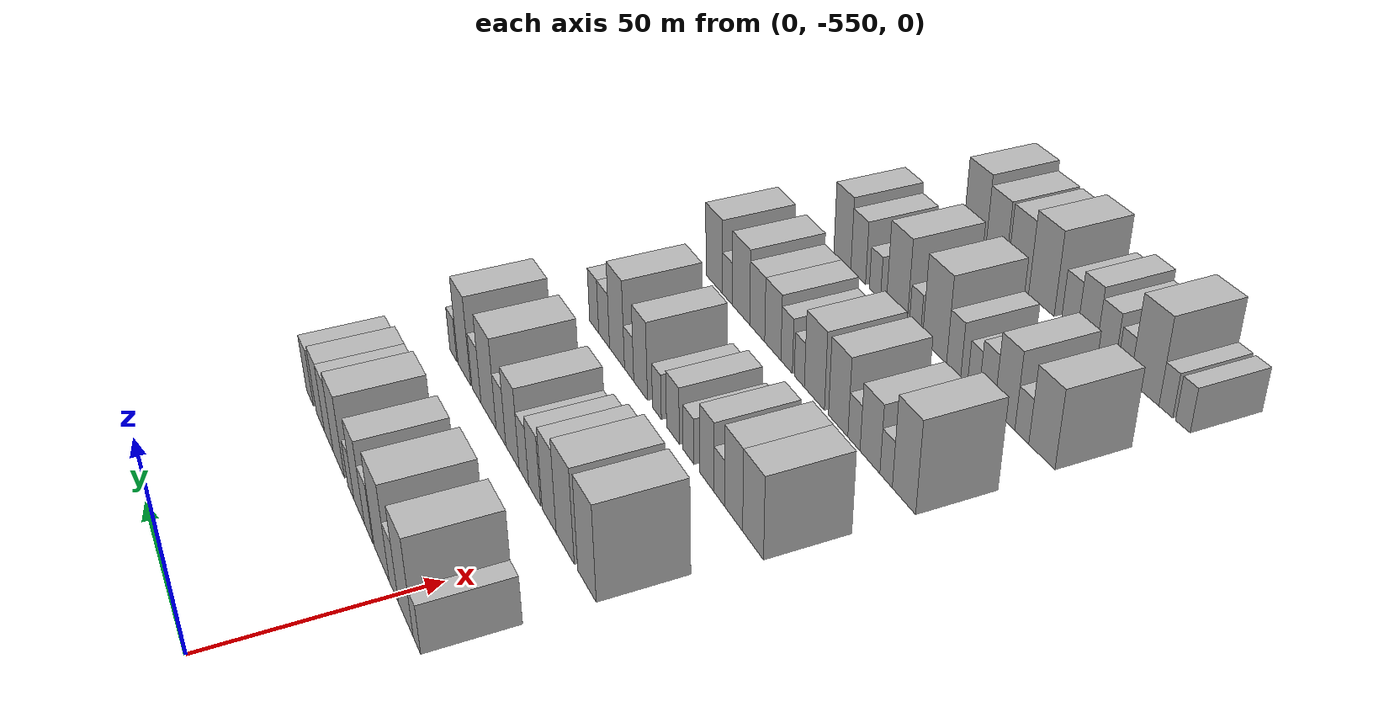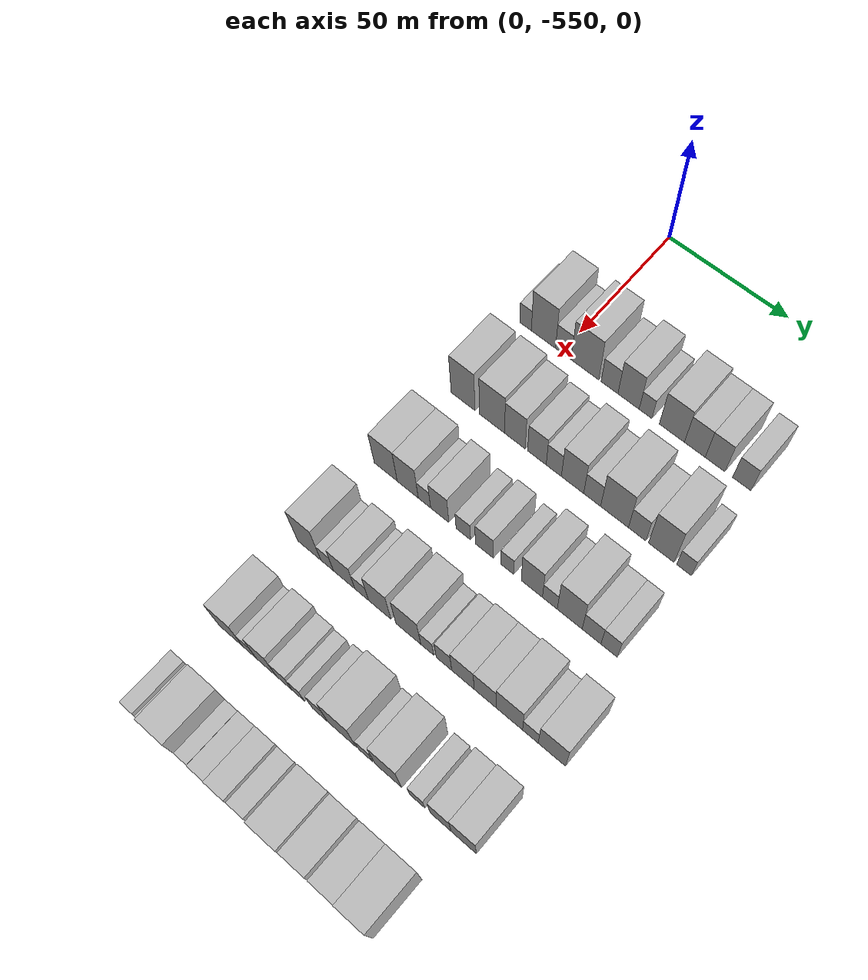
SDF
<sdf version="1.6">
 <world name="default">
  <model name="building_1">
   <static>1</static>
   <pose>50.0000 -565.4581 0 0.000000 0.000000 0.000000</pose>
   <link name="link">
    <pose>0 0 6.00 0 0 0</pose>
    <collision name="collision"><geometry><box><size>20.0000 5.0838 12.0000</size></box></geometry></collision>
    <visual name="visual">
     <cast_shadows>0</cast_shadows>
     <geometry><box><size>20.0000 5.0838 12.0000</size></box></geometry>
     <material>
      <script>
       <uri>model://HANNAS_wall/materials/scripts</uri>
       <uri>model://HANNAS_wall/materials/textures</uri>
       <name>vrc/HANNAS_wall</name>
      </script>
     </material>
    </visual>
   </link>
  </model>
  <model name="building_2">
   <static>1</static>
   <pose>50.0000 -557.6715 0 0.000000 0.000000 0.000000</pose>
   <link name="link">
    <pose>0 0 12.00 0 0 0</pose>
    <collision name="collision"><geometry><box><size>20.0000 10.4893 24.0000</size></box></geometry></collision>
    <visual name="visual">
     <cast_shadows>0</cast_shadows>
     <geometry><box><size>20.0000 10.4893 24.0000</size></box></geometry>
     <material>
      <script>
       <uri>model://HANNAS_wall/materials/scripts</uri>
       <uri>model://HANNAS_wall/materials/textures</uri>
       <name>vrc/HANNAS_wall</name>
      </script>
     </material>
    </visual>
   </link>
  </model>
  <model name="building_3">
   <static>1</static>
   <pose>50.0000 -549.0531 0 0.000000 0.000000 0.000000</pose>
   <link name="link">
    <pose>0 0 7.50 0 0 0</pose>
    <collision name="collision"><geometry><box><size>20.0000 6.7475 15.0000</size></box></geometry></collision>
    <visual name="visual">
     <cast_shadows>0</cast_shadows>
     <geometry><box><size>20.0000 6.7475 15.0000</size></box></geometry>
     <material>
      <script>
       <uri>model://HANNAS_wall/materials/scripts</uri>
       <uri>model://HANNAS_wall/materials/textures</uri>
       <name>vrc/HANNAS_wall</name>
      </script>
     </material>
    </visual>
   </link>
  </model>
  <model name="building_4">
   <static>1</static>
   <pose>50.0000 -539.8728 0 0.000000 0.000000 0.000000</pose>
   <link name="link">
    <pose>0 0 12.00 0 0 0</pose>
    <collision name="collision"><geometry><box><size>20.0000 11.6132 24.0000</size></box></geometry></collision>
    <visual name="visual">
     <cast_shadows>0</cast_shadows>
     <geometry><box><size>20.0000 11.6132 24.0000</size></box></geometry>
     <material>
      <script>
       <uri>model://HANNAS_wall/materials/scripts</uri>
       <uri>model://HANNAS_wall/materials/textures</uri>
       <name>vrc/HANNAS_wall</name>
      </script>
     </material>
    </visual>
   </link>
  </model>
  <model name="building_5">
   <static>1</static>
   <pose>50.0000 -529.5583 0 0.000000 0.000000 0.000000</pose>
   <link name="link">
    <pose>0 0 7.50 0 0 0</pose>
    <collision name="collision"><geometry><box><size>20.0000 7.0158 15.0000</size></box></geometry></collision>
    <visual name="visual">
     <cast_shadows>0</cast_shadows>
     <geometry><box><size>20.0000 7.0158 15.0000</size></box></geometry>
     <material>
      <script>
       <uri>model://HANNAS_wall/materials/scripts</uri>
       <uri>model://HANNAS_wall/materials/textures</uri>
       <name>vrc/HANNAS_wall</name>
      </script>
     </material>
    </visual>
   </link>
  </model>
  <model name="building_6">
   <static>1</static>
   <pose>50.0000 -521.6646 0 0.000000 0.000000 0.000000</pose>
   <link name="link">
    <pose>0 0 10.50 0 0 0</pose>
    <collision name="collision"><geometry><box><size>20.0000 8.7716 21.0000</size></box></geometry></collision>
    <visual name="visual">
     <cast_shadows>0</cast_shadows>
     <geometry><box><size>20.0000 8.7716 21.0000</size></box></geometry>
     <material>
      <script>
       <uri>model://HANNAS_wall/materials/scripts</uri>
       <uri>model://HANNAS_wall/materials/textures</uri>
       <name>vrc/HANNAS_wall</name>
      </script>
     </material>
    </visual>
   </link>
  </model>
  <model name="building_7">
   <static>1</static>
   <pose>50.0000 -514.6572 0 0.000000 0.000000 0.000000</pose>
   <link name="link">
    <pose>0 0 6.00 0 0 0</pose>
    <collision name="collision"><geometry><box><size>20.0000 5.2432 12.0000</size></box></geometry></collision>
    <visual name="visual">
     <cast_shadows>0</cast_shadows>
     <geometry><box><size>20.0000 5.2432 12.0000</size></box></geometry>
     <material>
      <script>
       <uri>model://HANNAS_wall/materials/scripts</uri>
       <uri>model://HANNAS_wall/materials/textures</uri>
       <name>vrc/HANNAS_wall</name>
      </script>
     </material>
    </visual>
   </link>
  </model>
  <model name="building_8">
   <static>1</static>
   <pose>50.0000 -503.9667 0 0.000000 0.000000 0.000000</pose>
   <link name="link">
    <pose>0 0 10.50 0 0 0</pose>
    <collision name="collision"><geometry><box><size>20.0000 10.1376 21.0000</size></box></geometry></collision>
    <visual name="visual">
     <cast_shadows>0</cast_shadows>
     <geometry><box><size>20.0000 10.1376 21.0000</size></box></geometry>
     <material>
      <script>
       <uri>model://HANNAS_wall/materials/scripts</uri>
       <uri>model://HANNAS_wall/materials/textures</uri>
       <name>vrc/HANNAS_wall</name>
      </script>
     </material>
    </visual>
   </link>
  </model>
  <model name="building_9">
   <static>1</static>
   <pose>50.0000 -494.7664 0 0.000000 0.000000 0.000000</pose>
   <link name="link">
    <pose>0 0 9.00 0 0 0</pose>
    <collision name="collision"><geometry><box><size>20.0000 8.2630 18.0000</size></box></geometry></collision>
    <visual name="visual">
     <cast_shadows>0</cast_shadows>
     <geometry><box><size>20.0000 8.2630 18.0000</size></box></geometry>
     <material>
      <script>
       <uri>model://HANNAS_wall/materials/scripts</uri>
       <uri>model://HANNAS_wall/materials/textures</uri>
       <name>vrc/HANNAS_wall</name>
      </script>
     </material>
    </visual>
   </link>
  </model>
  <model name="building_10">
   <static>1</static>
   <pose>50.0000 -486.7391 0 0.000000 0.000000 0.000000</pose>
   <link name="link">
    <pose>0 0 9.00 0 0 0</pose>
    <collision name="collision"><geometry><box><size>20.0000 7.7915 18.0000</size></box></geometry></collision>
    <visual name="visual">
     <cast_shadows>0</cast_shadows>
     <geometry><box><size>20.0000 7.7915 18.0000</size></box></geometry>
     <material>
      <script>
       <uri>model://HANNAS_wall/materials/scripts</uri>
       <uri>model://HANNAS_wall/materials/textures</uri>
       <name>vrc/HANNAS_wall</name>
      </script>
     </material>
    </visual>
   </link>
  </model>
  <model name="building_11">
   <static>1</static>
   <pose>50.0000 -476.2777 0 0.000000 0.000000 0.000000</pose>
   <link name="link">
    <pose>0 0 7.50 0 0 0</pose>
    <collision name="collision"><geometry><box><size>20.0000 7.1315 15.0000</size></box></geometry></collision>
    <visual name="visual">
     <cast_shadows>0</cast_shadows>
     <geometry><box><size>20.0000 7.1315 15.0000</size></box></geometry>
     <material>
      <script>
       <uri>model://HANNAS_wall/materials/scripts</uri>
       <uri>model://HANNAS_wall/materials/textures</uri>
       <name>vrc/HANNAS_wall</name>
      </script>
     </material>
    </visual>
   </link>
  </model>
  <model name="building_129">
   <static>1</static>
   <pose>85.0000 -562.8506 0 0.000000 0.000000 0.000000</pose>
   <link name="link">
    <pose>0 0 12.00 0 0 0</pose>
    <collision name="collision"><geometry><box><size>20.0000 10.2987 24.0000</size></box></geometry></collision>
    <visual name="visual">
     <cast_shadows>0</cast_shadows>
     <geometry><box><size>20.0000 10.2987 24.0000</size></box></geometry>
     <material>
      <script>
       <uri>model://HANNAS_wall/materials/scripts</uri>
       <uri>model://HANNAS_wall/materials/textures</uri>
       <name>vrc/HANNAS_wall</name>
      </script>
     </material>
    </visual>
   </link>
  </model>
  <model name="building_130">
   <static>1</static>
   <pose>85.0000 -550.3780 0 0.000000 0.000000 0.000000</pose>
   <link name="link">
    <pose>0 0 12.00 0 0 0</pose>
    <collision name="collision"><geometry><box><size>20.0000 10.6466 24.0000</size></box></geometry></collision>
    <visual name="visual">
     <cast_shadows>0</cast_shadows>
     <geometry><box><size>20.0000 10.6466 24.0000</size></box></geometry>
     <material>
      <script>
       <uri>model://HANNAS_wall/materials/scripts</uri>
       <uri>model://HANNAS_wall/materials/textures</uri>
       <name>vrc/HANNAS_wall</name>
      </script>
     </material>
    </visual>
   </link>
  </model>
  <model name="building_131">
   <static>1</static>
   <pose>85.0000 -540.7468 0 0.000000 0.000000 0.000000</pose>
   <link name="link">
    <pose>0 0 10.50 0 0 0</pose>
    <collision name="collision"><geometry><box><size>20.0000 8.6158 21.0000</size></box></geometry></collision>
    <visual name="visual">
     <cast_shadows>0</cast_shadows>
     <geometry><box><size>20.0000 8.6158 21.0000</size></box></geometry>
     <material>
      <script>
       <uri>model://HANNAS_wall/materials/scripts</uri>
       <uri>model://HANNAS_wall/materials/textures</uri>
       <name>vrc/HANNAS_wall</name>
      </script>
     </material>
    </visual>
   </link>
  </model>
  <model name="building_132">
   <static>1</static>
   <pose>85.0000 -531.5875 0 0.000000 0.000000 0.000000</pose>
   <link name="link">
    <pose>0 0 9.00 0 0 0</pose>
    <collision name="collision"><geometry><box><size>20.0000 7.7028 18.0000</size></box></geometry></collision>
    <visual name="visual">
     <cast_shadows>0</cast_shadows>
     <geometry><box><size>20.0000 7.7028 18.0000</size></box></geometry>
     <material>
      <script>
       <uri>model://HANNAS_wall/materials/scripts</uri>
       <uri>model://HANNAS_wall/materials/textures</uri>
       <name>vrc/HANNAS_wall</name>
      </script>
     </material>
    </visual>
   </link>
  </model>
  <model name="building_133">
   <static>1</static>
   <pose>85.0000 -524.6106 0 0.000000 0.000000 0.000000</pose>
   <link name="link">
    <pose>0 0 7.50 0 0 0</pose>
    <collision name="collision"><geometry><box><size>20.0000 6.2509 15.0000</size></box></geometry></collision>
    <visual name="visual">
     <cast_shadows>0</cast_shadows>
     <geometry><box><size>20.0000 6.2509 15.0000</size></box></geometry>
     <material>
      <script>
       <uri>model://HANNAS_wall/materials/scripts</uri>
       <uri>model://HANNAS_wall/materials/textures</uri>
       <name>vrc/HANNAS_wall</name>
      </script>
     </material>
    </visual>
   </link>
  </model>
  <model name="building_134">
   <static>1</static>
   <pose>85.0000 -516.9513 0 0.000000 0.000000 0.000000</pose>
   <link name="link">
    <pose>0 0 10.50 0 0 0</pose>
    <collision name="collision"><geometry><box><size>20.0000 9.0677 21.0000</size></box></geometry></collision>
    <visual name="visual">
     <cast_shadows>0</cast_shadows>
     <geometry><box><size>20.0000 9.0677 21.0000</size></box></geometry>
     <material>
      <script>
       <uri>model://HANNAS_wall/materials/scripts</uri>
       <uri>model://HANNAS_wall/materials/textures</uri>
       <name>vrc/HANNAS_wall</name>
      </script>
     </material>
    </visual>
   </link>
  </model>
  <model name="building_135">
   <static>1</static>
   <pose>85.0000 -509.0033 0 0.000000 0.000000 0.000000</pose>
   <link name="link">
    <pose>0 0 7.50 0 0 0</pose>
    <collision name="collision"><geometry><box><size>20.0000 6.8282 15.0000</size></box></geometry></collision>
    <visual name="visual">
     <cast_shadows>0</cast_shadows>
     <geometry><box><size>20.0000 6.8282 15.0000</size></box></geometry>
     <material>
      <script>
       <uri>model://HANNAS_wall/materials/scripts</uri>
       <uri>model://HANNAS_wall/materials/textures</uri>
       <name>vrc/HANNAS_wall</name>
      </script>
     </material>
    </visual>
   </link>
  </model>
  <model name="building_136">
   <static>1</static>
   <pose>85.0000 -500.0573 0 0.000000 0.000000 0.000000</pose>
   <link name="link">
    <pose>0 0 12.00 0 0 0</pose>
    <collision name="collision"><geometry><box><size>20.0000 11.0639 24.0000</size></box></geometry></collision>
    <visual name="visual">
     <cast_shadows>0</cast_shadows>
     <geometry><box><size>20.0000 11.0639 24.0000</size></box></geometry>
     <material>
      <script>
       <uri>model://HANNAS_wall/materials/scripts</uri>
       <uri>model://HANNAS_wall/materials/textures</uri>
       <name>vrc/HANNAS_wall</name>
      </script>
     </material>
    </visual>
   </link>
  </model>
  <model name="building_137">
   <static>1</static>
   <pose>85.0000 -491.0906 0 0.000000 0.000000 0.000000</pose>
   <link name="link">
    <pose>0 0 7.50 0 0 0</pose>
    <collision name="collision"><geometry><box><size>20.0000 6.8696 15.0000</size></box></geometry></collision>
    <visual name="visual">
     <cast_shadows>0</cast_shadows>
     <geometry><box><size>20.0000 6.8696 15.0000</size></box></geometry>
     <material>
      <script>
       <uri>model://HANNAS_wall/materials/scripts</uri>
       <uri>model://HANNAS_wall/materials/textures</uri>
       <name>vrc/HANNAS_wall</name>
      </script>
     </material>
    </visual>
   </link>
  </model>
  <model name="building_138">
   <static>1</static>
   <pose>85.0000 -481.6881 0 0.000000 0.000000 0.000000</pose>
   <link name="link">
    <pose>0 0 12.00 0 0 0</pose>
    <collision name="collision"><geometry><box><size>20.0000 9.9352 24.0000</size></box></geometry></collision>
    <visual name="visual">
     <cast_shadows>0</cast_shadows>
     <geometry><box><size>20.0000 9.9352 24.0000</size></box></geometry>
     <material>
      <script>
       <uri>model://HANNAS_wall/materials/scripts</uri>
       <uri>model://HANNAS_wall/materials/textures</uri>
       <name>vrc/HANNAS_wall</name>
      </script>
     </material>
    </visual>
   </link>
  </model>
  <model name="building_139">
   <static>1</static>
   <pose>85.0000 -472.8784 0 0.000000 0.000000 0.000000</pose>
   <link name="link">
    <pose>0 0 6.00 0 0 0</pose>
    <collision name="collision"><geometry><box><size>20.0000 5.6842 12.0000</size></box></geometry></collision>
    <visual name="visual">
     <cast_shadows>0</cast_shadows>
     <geometry><box><size>20.0000 5.6842 12.0000</size></box></geometry>
     <material>
      <script>
       <uri>model://HANNAS_wall/materials/scripts</uri>
       <uri>model://HANNAS_wall/materials/textures</uri>
       <name>vrc/HANNAS_wall</name>
      </script>
     </material>
    </visual>
   </link>
  </model>
  <model name="building_256">
   <static>1</static>
   <pose>120.0000 -565.0610 0 0.000000 0.000000 0.000000</pose>
   <link name="link">
    <pose>0 0 10.50 0 0 0</pose>
    <collision name="collision"><geometry><box><size>20.0000 9.8781 21.0000</size></box></geometry></collision>
    <visual name="visual">
     <cast_shadows>0</cast_shadows>
     <geometry><box><size>20.0000 9.8781 21.0000</size></box></geometry>
     <material>
      <script>
       <uri>model://HANNAS_wall/materials/scripts</uri>
       <uri>model://HANNAS_wall/materials/textures</uri>
       <name>vrc/HANNAS_wall</name>
      </script>
     </material>
    </visual>
   </link>
  </model>
  <model name="building_257">
   <static>1</static>
   <pose>120.0000 -555.6345 0 0.000000 0.000000 0.000000</pose>
   <link name="link">
    <pose>0 0 10.50 0 0 0</pose>
    <collision name="collision"><geometry><box><size>20.0000 8.9749 21.0000</size></box></geometry></collision>
    <visual name="visual">
     <cast_shadows>0</cast_shadows>
     <geometry><box><size>20.0000 8.9749 21.0000</size></box></geometry>
     <material>
      <script>
       <uri>model://HANNAS_wall/materials/scripts</uri>
       <uri>model://HANNAS_wall/materials/textures</uri>
       <name>vrc/HANNAS_wall</name>
      </script>
     </material>
    </visual>
   </link>
  </model>
  <model name="building_258">
   <static>1</static>
   <pose>120.0000 -548.5439 0 0.000000 0.000000 0.000000</pose>
   <link name="link">
    <pose>0 0 6.00 0 0 0</pose>
    <collision name="collision"><geometry><box><size>20.0000 5.2063 12.0000</size></box></geometry></collision>
    <visual name="visual">
     <cast_shadows>0</cast_shadows>
     <geometry><box><size>20.0000 5.2063 12.0000</size></box></geometry>
     <material>
      <script>
       <uri>model://HANNAS_wall/materials/scripts</uri>
       <uri>model://HANNAS_wall/materials/textures</uri>
       <name>vrc/HANNAS_wall</name>
      </script>
     </material>
    </visual>
   </link>
  </model>
  <model name="building_259">
   <static>1</static>
   <pose>120.0000 -542.1446 0 0.000000 0.000000 0.000000</pose>
   <link name="link">
    <pose>0 0 9.00 0 0 0</pose>
    <collision name="collision"><geometry><box><size>20.0000 7.5924 18.0000</size></box></geometry></collision>
    <visual name="visual">
     <cast_shadows>0</cast_shadows>
     <geometry><box><size>20.0000 7.5924 18.0000</size></box></geometry>
     <material>
      <script>
       <uri>model://HANNAS_wall/materials/scripts</uri>
       <uri>model://HANNAS_wall/materials/textures</uri>
       <name>vrc/HANNAS_wall</name>
      </script>
     </material>
    </visual>
   </link>
  </model>
  <model name="building_260">
   <static>1</static>
   <pose>120.0000 -532.3540 0 0.000000 0.000000 0.000000</pose>
   <link name="link">
    <pose>0 0 6.00 0 0 0</pose>
    <collision name="collision"><geometry><box><size>20.0000 5.9888 12.0000</size></box></geometry></collision>
    <visual name="visual">
     <cast_shadows>0</cast_shadows>
     <geometry><box><size>20.0000 5.9888 12.0000</size></box></geometry>
     <material>
      <script>
       <uri>model://HANNAS_wall/materials/scripts</uri>
       <uri>model://HANNAS_wall/materials/textures</uri>
       <name>vrc/HANNAS_wall</name>
      </script>
     </material>
    </visual>
   </link>
  </model>
  <model name="building_261">
   <static>1</static>
   <pose>120.0000 -523.7122 0 0.000000 0.000000 0.000000</pose>
   <link name="link">
    <pose>0 0 7.50 0 0 0</pose>
    <collision name="collision"><geometry><box><size>20.0000 7.2947 15.0000</size></box></geometry></collision>
    <visual name="visual">
     <cast_shadows>0</cast_shadows>
     <geometry><box><size>20.0000 7.2947 15.0000</size></box></geometry>
     <material>
      <script>
       <uri>model://HANNAS_wall/materials/scripts</uri>
       <uri>model://HANNAS_wall/materials/textures</uri>
       <name>vrc/HANNAS_wall</name>
      </script>
     </material>
    </visual>
   </link>
  </model>
  <model name="building_262">
   <static>1</static>
   <pose>120.0000 -514.4726 0 0.000000 0.000000 0.000000</pose>
   <link name="link">
    <pose>0 0 6.00 0 0 0</pose>
    <collision name="collision"><geometry><box><size>20.0000 5.1846 12.0000</size></box></geometry></collision>
    <visual name="visual">
     <cast_shadows>0</cast_shadows>
     <geometry><box><size>20.0000 5.1846 12.0000</size></box></geometry>
     <material>
      <script>
       <uri>model://HANNAS_wall/materials/scripts</uri>
       <uri>model://HANNAS_wall/materials/textures</uri>
       <name>vrc/HANNAS_wall</name>
      </script>
     </material>
    </visual>
   </link>
  </model>
  <model name="building_263">
   <static>1</static>
   <pose>120.0000 -504.6762 0 0.000000 0.000000 0.000000</pose>
   <link name="link">
    <pose>0 0 10.50 0 0 0</pose>
    <collision name="collision"><geometry><box><size>20.0000 8.4081 21.0000</size></box></geometry></collision>
    <visual name="visual">
     <cast_shadows>0</cast_shadows>
     <geometry><box><size>20.0000 8.4081 21.0000</size></box></geometry>
     <material>
      <script>
       <uri>model://HANNAS_wall/materials/scripts</uri>
       <uri>model://HANNAS_wall/materials/textures</uri>
       <name>vrc/HANNAS_wall</name>
      </script>
     </material>
    </visual>
   </link>
  </model>
  <model name="building_264">
   <static>1</static>
   <pose>120.0000 -497.5766 0 0.000000 0.000000 0.000000</pose>
   <link name="link">
    <pose>0 0 6.00 0 0 0</pose>
    <collision name="collision"><geometry><box><size>20.0000 5.7912 12.0000</size></box></geometry></collision>
    <visual name="visual">
     <cast_shadows>0</cast_shadows>
     <geometry><box><size>20.0000 5.7912 12.0000</size></box></geometry>
     <material>
      <script>
       <uri>model://HANNAS_wall/materials/scripts</uri>
       <uri>model://HANNAS_wall/materials/textures</uri>
       <name>vrc/HANNAS_wall</name>
      </script>
     </material>
    </visual>
   </link>
  </model>
  <model name="building_265">
   <static>1</static>
   <pose>120.0000 -489.8428 0 0.000000 0.000000 0.000000</pose>
   <link name="link">
    <pose>0 0 12.00 0 0 0</pose>
    <collision name="collision"><geometry><box><size>20.0000 9.6764 24.0000</size></box></geometry></collision>
    <visual name="visual">
     <cast_shadows>0</cast_shadows>
     <geometry><box><size>20.0000 9.6764 24.0000</size></box></geometry>
     <material>
      <script>
       <uri>model://HANNAS_wall/materials/scripts</uri>
       <uri>model://HANNAS_wall/materials/textures</uri>
       <name>vrc/HANNAS_wall</name>
      </script>
     </material>
    </visual>
   </link>
  </model>
  <model name="building_266">
   <static>1</static>
   <pose>120.0000 -481.3848 0 0.000000 0.000000 0.000000</pose>
   <link name="link">
    <pose>0 0 7.50 0 0 0</pose>
    <collision name="collision"><geometry><box><size>20.0000 7.2395 15.0000</size></box></geometry></collision>
    <visual name="visual">
     <cast_shadows>0</cast_shadows>
     <geometry><box><size>20.0000 7.2395 15.0000</size></box></geometry>
     <material>
      <script>
       <uri>model://HANNAS_wall/materials/scripts</uri>
       <uri>model://HANNAS_wall/materials/textures</uri>
       <name>vrc/HANNAS_wall</name>
      </script>
     </material>
    </visual>
   </link>
  </model>
  <model name="building_267">
   <static>1</static>
   <pose>120.0000 -474.6594 0 0.000000 0.000000 0.000000</pose>
   <link name="link">
    <pose>0 0 7.50 0 0 0</pose>
    <collision name="collision"><geometry><box><size>20.0000 6.2113 15.0000</size></box></geometry></collision>
    <visual name="visual">
     <cast_shadows>0</cast_shadows>
     <geometry><box><size>20.0000 6.2113 15.0000</size></box></geometry>
     <material>
      <script>
       <uri>model://HANNAS_wall/materials/scripts</uri>
       <uri>model://HANNAS_wall/materials/textures</uri>
       <name>vrc/HANNAS_wall</name>
      </script>
     </material>
    </visual>
   </link>
  </model>
  <model name="building_379">
   <static>1</static>
   <pose>155.0000 -565.0658 0 0.000000 0.000000 0.000000</pose>
   <link name="link">
    <pose>0 0 12.00 0 0 0</pose>
    <collision name="collision"><geometry><box><size>20.0000 9.8684 24.0000</size></box></geometry></collision>
    <visual name="visual">
     <cast_shadows>0</cast_shadows>
     <geometry><box><size>20.0000 9.8684 24.0000</size></box></geometry>
     <material>
      <script>
       <uri>model://HANNAS_wall/materials/scripts</uri>
       <uri>model://HANNAS_wall/materials/textures</uri>
       <name>vrc/HANNAS_wall</name>
      </script>
     </material>
    </visual>
   </link>
  </model>
  <model name="building_380">
   <static>1</static>
   <pose>155.0000 -557.4264 0 0.000000 0.000000 0.000000</pose>
   <link name="link">
    <pose>0 0 6.00 0 0 0</pose>
    <collision name="collision"><geometry><box><size>20.0000 5.4104 12.0000</size></box></geometry></collision>
    <visual name="visual">
     <cast_shadows>0</cast_shadows>
     <geometry><box><size>20.0000 5.4104 12.0000</size></box></geometry>
     <material>
      <script>
       <uri>model://HANNAS_wall/materials/scripts</uri>
       <uri>model://HANNAS_wall/materials/textures</uri>
       <name>vrc/HANNAS_wall</name>
      </script>
     </material>
    </visual>
   </link>
  </model>
  <model name="building_381">
   <static>1</static>
   <pose>155.0000 -550.2672 0 0.000000 0.000000 0.000000</pose>
   <link name="link">
    <pose>0 0 9.00 0 0 0</pose>
    <collision name="collision"><geometry><box><size>20.0000 8.9079 18.0000</size></box></geometry></collision>
    <visual name="visual">
     <cast_shadows>0</cast_shadows>
     <geometry><box><size>20.0000 8.9079 18.0000</size></box></geometry>
     <material>
      <script>
       <uri>model://HANNAS_wall/materials/scripts</uri>
       <uri>model://HANNAS_wall/materials/textures</uri>
       <name>vrc/HANNAS_wall</name>
      </script>
     </material>
    </visual>
   </link>
  </model>
  <model name="building_382">
   <static>1</static>
   <pose>155.0000 -542.9859 0 0.000000 0.000000 0.000000</pose>
   <link name="link">
    <pose>0 0 6.00 0 0 0</pose>
    <collision name="collision"><geometry><box><size>20.0000 5.6548 12.0000</size></box></geometry></collision>
    <visual name="visual">
     <cast_shadows>0</cast_shadows>
     <geometry><box><size>20.0000 5.6548 12.0000</size></box></geometry>
     <material>
      <script>
       <uri>model://HANNAS_wall/materials/scripts</uri>
       <uri>model://HANNAS_wall/materials/textures</uri>
       <name>vrc/HANNAS_wall</name>
      </script>
     </material>
    </visual>
   </link>
  </model>
  <model name="building_383">
   <static>1</static>
   <pose>155.0000 -535.5346 0 0.000000 0.000000 0.000000</pose>
   <link name="link">
    <pose>0 0 10.50 0 0 0</pose>
    <collision name="collision"><geometry><box><size>20.0000 9.2479 21.0000</size></box></geometry></collision>
    <visual name="visual">
     <cast_shadows>0</cast_shadows>
     <geometry><box><size>20.0000 9.2479 21.0000</size></box></geometry>
     <material>
      <script>
       <uri>model://HANNAS_wall/materials/scripts</uri>
       <uri>model://HANNAS_wall/materials/textures</uri>
       <name>vrc/HANNAS_wall</name>
      </script>
     </material>
    </visual>
   </link>
  </model>
  <model name="building_384">
   <static>1</static>
   <pose>155.0000 -523.8795 0 0.000000 0.000000 0.000000</pose>
   <link name="link">
    <pose>0 0 10.50 0 0 0</pose>
    <collision name="collision"><geometry><box><size>20.0000 10.0623 21.0000</size></box></geometry></collision>
    <visual name="visual">
     <cast_shadows>0</cast_shadows>
     <geometry><box><size>20.0000 10.0623 21.0000</size></box></geometry>
     <material>
      <script>
       <uri>model://HANNAS_wall/materials/scripts</uri>
       <uri>model://HANNAS_wall/materials/textures</uri>
       <name>vrc/HANNAS_wall</name>
      </script>
     </material>
    </visual>
   </link>
  </model>
  <model name="building_385">
   <static>1</static>
   <pose>155.0000 -516.2534 0 0.000000 0.000000 0.000000</pose>
   <link name="link">
    <pose>0 0 6.00 0 0 0</pose>
    <collision name="collision"><geometry><box><size>20.0000 5.1899 12.0000</size></box></geometry></collision>
    <visual name="visual">
     <cast_shadows>0</cast_shadows>
     <geometry><box><size>20.0000 5.1899 12.0000</size></box></geometry>
     <material>
      <script>
       <uri>model://HANNAS_wall/materials/scripts</uri>
       <uri>model://HANNAS_wall/materials/textures</uri>
       <name>vrc/HANNAS_wall</name>
      </script>
     </material>
    </visual>
   </link>
  </model>
  <model name="building_386">
   <static>1</static>
   <pose>155.0000 -509.6047 0 0.000000 0.000000 0.000000</pose>
   <link name="link">
    <pose>0 0 7.50 0 0 0</pose>
    <collision name="collision"><geometry><box><size>20.0000 6.1074 15.0000</size></box></geometry></collision>
    <visual name="visual">
     <cast_shadows>0</cast_shadows>
     <geometry><box><size>20.0000 6.1074 15.0000</size></box></geometry>
     <material>
      <script>
       <uri>model://HANNAS_wall/materials/scripts</uri>
       <uri>model://HANNAS_wall/materials/textures</uri>
       <name>vrc/HANNAS_wall</name>
      </script>
     </material>
    </visual>
   </link>
  </model>
  <model name="building_387">
   <static>1</static>
   <pose>155.0000 -502.1464 0 0.000000 0.000000 0.000000</pose>
   <link name="link">
    <pose>0 0 9.00 0 0 0</pose>
    <collision name="collision"><geometry><box><size>20.0000 8.8093 18.0000</size></box></geometry></collision>
    <visual name="visual">
     <cast_shadows>0</cast_shadows>
     <geometry><box><size>20.0000 8.8093 18.0000</size></box></geometry>
     <material>
      <script>
       <uri>model://HANNAS_wall/materials/scripts</uri>
       <uri>model://HANNAS_wall/materials/textures</uri>
       <name>vrc/HANNAS_wall</name>
      </script>
     </material>
    </visual>
   </link>
  </model>
  <model name="building_388">
   <static>1</static>
   <pose>155.0000 -493.5117 0 0.000000 0.000000 0.000000</pose>
   <link name="link">
    <pose>0 0 9.00 0 0 0</pose>
    <collision name="collision"><geometry><box><size>20.0000 8.4601 18.0000</size></box></geometry></collision>
    <visual name="visual">
     <cast_shadows>0</cast_shadows>
     <geometry><box><size>20.0000 8.4601 18.0000</size></box></geometry>
     <material>
      <script>
       <uri>model://HANNAS_wall/materials/scripts</uri>
       <uri>model://HANNAS_wall/materials/textures</uri>
       <name>vrc/HANNAS_wall</name>
      </script>
     </material>
    </visual>
   </link>
  </model>
  <model name="building_389">
   <static>1</static>
   <pose>155.0000 -484.2141 0 0.000000 0.000000 0.000000</pose>
   <link name="link">
    <pose>0 0 10.50 0 0 0</pose>
    <collision name="collision"><geometry><box><size>20.0000 10.1350 21.0000</size></box></geometry></collision>
    <visual name="visual">
     <cast_shadows>0</cast_shadows>
     <geometry><box><size>20.0000 10.1350 21.0000</size></box></geometry>
     <material>
      <script>
       <uri>model://HANNAS_wall/materials/scripts</uri>
       <uri>model://HANNAS_wall/materials/textures</uri>
       <name>vrc/HANNAS_wall</name>
      </script>
     </material>
    </visual>
   </link>
  </model>
  <model name="building_390">
   <static>1</static>
   <pose>155.0000 -476.2043 0 0.000000 0.000000 0.000000</pose>
   <link name="link">
    <pose>0 0 6.00 0 0 0</pose>
    <collision name="collision"><geometry><box><size>20.0000 5.8846 12.0000</size></box></geometry></collision>
    <visual name="visual">
     <cast_shadows>0</cast_shadows>
     <geometry><box><size>20.0000 5.8846 12.0000</size></box></geometry>
     <material>
      <script>
       <uri>model://HANNAS_wall/materials/scripts</uri>
       <uri>model://HANNAS_wall/materials/textures</uri>
       <name>vrc/HANNAS_wall</name>
      </script>
     </material>
    </visual>
   </link>
  </model>
  <model name="building_391">
   <static>1</static>
   <pose>155.0000 -468.1618 0 0.000000 0.000000 0.000000</pose>
   <link name="link">
    <pose>0 0 10.50 0 0 0</pose>
    <collision name="collision"><geometry><box><size>20.0000 10.2005 21.0000</size></box></geometry></collision>
    <visual name="visual">
     <cast_shadows>0</cast_shadows>
     <geometry><box><size>20.0000 10.2005 21.0000</size></box></geometry>
     <material>
      <script>
       <uri>model://HANNAS_wall/materials/scripts</uri>
       <uri>model://HANNAS_wall/materials/textures</uri>
       <name>vrc/HANNAS_wall</name>
      </script>
     </material>
    </visual>
   </link>
  </model>
  <model name="building_514">
   <static>1</static>
   <pose>190.0000 -563.9224 0 0.000000 0.000000 0.000000</pose>
   <link name="link">
    <pose>0 0 10.50 0 0 0</pose>
    <collision name="collision"><geometry><box><size>20.0000 10.1552 21.0000</size></box></geometry></collision>
    <visual name="visual">
     <cast_shadows>0</cast_shadows>
     <geometry><box><size>20.0000 10.1552 21.0000</size></box></geometry>
     <material>
      <script>
       <uri>model://HANNAS_wall/materials/scripts</uri>
       <uri>model://HANNAS_wall/materials/textures</uri>
       <name>vrc/HANNAS_wall</name>
      </script>
     </material>
    </visual>
   </link>
  </model>
  <model name="building_515">
   <static>1</static>
   <pose>190.0000 -556.0374 0 0.000000 0.000000 0.000000</pose>
   <link name="link">
    <pose>0 0 6.00 0 0 0</pose>
    <collision name="collision"><geometry><box><size>20.0000 5.6148 12.0000</size></box></geometry></collision>
    <visual name="visual">
     <cast_shadows>0</cast_shadows>
     <geometry><box><size>20.0000 5.6148 12.0000</size></box></geometry>
     <material>
      <script>
       <uri>model://HANNAS_wall/materials/scripts</uri>
       <uri>model://HANNAS_wall/materials/textures</uri>
       <name>vrc/HANNAS_wall</name>
      </script>
     </material>
    </visual>
   </link>
  </model>
  <model name="building_516">
   <static>1</static>
   <pose>190.0000 -548.9954 0 0.000000 0.000000 0.000000</pose>
   <link name="link">
    <pose>0 0 10.50 0 0 0</pose>
    <collision name="collision"><geometry><box><size>20.0000 8.4692 21.0000</size></box></geometry></collision>
    <visual name="visual">
     <cast_shadows>0</cast_shadows>
     <geometry><box><size>20.0000 8.4692 21.0000</size></box></geometry>
     <material>
      <script>
       <uri>model://HANNAS_wall/materials/scripts</uri>
       <uri>model://HANNAS_wall/materials/textures</uri>
       <name>vrc/HANNAS_wall</name>
      </script>
     </material>
    </visual>
   </link>
  </model>
  <model name="building_517">
   <static>1</static>
   <pose>190.0000 -541.4841 0 0.000000 0.000000 0.000000</pose>
   <link name="link">
    <pose>0 0 7.50 0 0 0</pose>
    <collision name="collision"><geometry><box><size>20.0000 6.5533 15.0000</size></box></geometry></collision>
    <visual name="visual">
     <cast_shadows>0</cast_shadows>
     <geometry><box><size>20.0000 6.5533 15.0000</size></box></geometry>
     <material>
      <script>
       <uri>model://HANNAS_wall/materials/scripts</uri>
       <uri>model://HANNAS_wall/materials/textures</uri>
       <name>vrc/HANNAS_wall</name>
      </script>
     </material>
    </visual>
   </link>
  </model>
  <model name="building_518">
   <static>1</static>
   <pose>190.0000 -535.7211 0 0.000000 0.000000 0.000000</pose>
   <link name="link">
    <pose>0 0 6.00 0 0 0</pose>
    <collision name="collision"><geometry><box><size>20.0000 4.9728 12.0000</size></box></geometry></collision>
    <visual name="visual">
     <cast_shadows>0</cast_shadows>
     <geometry><box><size>20.0000 4.9728 12.0000</size></box></geometry>
     <material>
      <script>
       <uri>model://HANNAS_wall/materials/scripts</uri>
       <uri>model://HANNAS_wall/materials/textures</uri>
       <name>vrc/HANNAS_wall</name>
      </script>
     </material>
    </visual>
   </link>
  </model>
  <model name="building_519">
   <static>1</static>
   <pose>190.0000 -527.0493 0 0.000000 0.000000 0.000000</pose>
   <link name="link">
    <pose>0 0 7.50 0 0 0</pose>
    <collision name="collision"><geometry><box><size>20.0000 6.3707 15.0000</size></box></geometry></collision>
    <visual name="visual">
     <cast_shadows>0</cast_shadows>
     <geometry><box><size>20.0000 6.3707 15.0000</size></box></geometry>
     <material>
      <script>
       <uri>model://HANNAS_wall/materials/scripts</uri>
       <uri>model://HANNAS_wall/materials/textures</uri>
       <name>vrc/HANNAS_wall</name>
      </script>
     </material>
    </visual>
   </link>
  </model>
  <model name="building_520">
   <static>1</static>
   <pose>190.0000 -518.2373 0 0.000000 0.000000 0.000000</pose>
   <link name="link">
    <pose>0 0 12.00 0 0 0</pose>
    <collision name="collision"><geometry><box><size>20.0000 11.2532 24.0000</size></box></geometry></collision>
    <visual name="visual">
     <cast_shadows>0</cast_shadows>
     <geometry><box><size>20.0000 11.2532 24.0000</size></box></geometry>
     <material>
      <script>
       <uri>model://HANNAS_wall/materials/scripts</uri>
       <uri>model://HANNAS_wall/materials/textures</uri>
       <name>vrc/HANNAS_wall</name>
      </script>
     </material>
    </visual>
   </link>
  </model>
  <model name="building_521">
   <static>1</static>
   <pose>190.0000 -508.9048 0 0.000000 0.000000 0.000000</pose>
   <link name="link">
    <pose>0 0 6.00 0 0 0</pose>
    <collision name="collision"><geometry><box><size>20.0000 5.4119 12.0000</size></box></geometry></collision>
    <visual name="visual">
     <cast_shadows>0</cast_shadows>
     <geometry><box><size>20.0000 5.4119 12.0000</size></box></geometry>
     <material>
      <script>
       <uri>model://HANNAS_wall/materials/scripts</uri>
       <uri>model://HANNAS_wall/materials/textures</uri>
       <name>vrc/HANNAS_wall</name>
      </script>
     </material>
    </visual>
   </link>
  </model>
  <model name="building_522">
   <static>1</static>
   <pose>190.0000 -500.0292 0 0.000000 0.000000 0.000000</pose>
   <link name="link">
    <pose>0 0 12.00 0 0 0</pose>
    <collision name="collision"><geometry><box><size>20.0000 10.3393 24.0000</size></box></geometry></collision>
    <visual name="visual">
     <cast_shadows>0</cast_shadows>
     <geometry><box><size>20.0000 10.3393 24.0000</size></box></geometry>
     <material>
      <script>
       <uri>model://HANNAS_wall/materials/scripts</uri>
       <uri>model://HANNAS_wall/materials/textures</uri>
       <name>vrc/HANNAS_wall</name>
      </script>
     </material>
    </visual>
   </link>
  </model>
  <model name="building_523">
   <static>1</static>
   <pose>190.0000 -488.9536 0 0.000000 0.000000 0.000000</pose>
   <link name="link">
    <pose>0 0 6.00 0 0 0</pose>
    <collision name="collision"><geometry><box><size>20.0000 5.8119 12.0000</size></box></geometry></collision>
    <visual name="visual">
     <cast_shadows>0</cast_shadows>
     <geometry><box><size>20.0000 5.8119 12.0000</size></box></geometry>
     <material>
      <script>
       <uri>model://HANNAS_wall/materials/scripts</uri>
       <uri>model://HANNAS_wall/materials/textures</uri>
       <name>vrc/HANNAS_wall</name>
      </script>
     </material>
    </visual>
   </link>
  </model>
  <model name="building_524">
   <static>1</static>
   <pose>190.0000 -480.0886 0 0.000000 0.000000 0.000000</pose>
   <link name="link">
    <pose>0 0 9.00 0 0 0</pose>
    <collision name="collision"><geometry><box><size>20.0000 7.9181 18.0000</size></box></geometry></collision>
    <visual name="visual">
     <cast_shadows>0</cast_shadows>
     <geometry><box><size>20.0000 7.9181 18.0000</size></box></geometry>
     <material>
      <script>
       <uri>model://HANNAS_wall/materials/scripts</uri>
       <uri>model://HANNAS_wall/materials/textures</uri>
       <name>vrc/HANNAS_wall</name>
      </script>
     </material>
    </visual>
   </link>
  </model>
  <model name="building_525">
   <static>1</static>
   <pose>190.0000 -471.4412 0 0.000000 0.000000 0.000000</pose>
   <link name="link">
    <pose>0 0 10.50 0 0 0</pose>
    <collision name="collision"><geometry><box><size>20.0000 9.3767 21.0000</size></box></geometry></collision>
    <visual name="visual">
     <cast_shadows>0</cast_shadows>
     <geometry><box><size>20.0000 9.3767 21.0000</size></box></geometry>
     <material>
      <script>
       <uri>model://HANNAS_wall/materials/scripts</uri>
       <uri>model://HANNAS_wall/materials/textures</uri>
       <name>vrc/HANNAS_wall</name>
      </script>
     </material>
    </visual>
   </link>
  </model>
  <model name="building_637">
   <static>1</static>
   <pose>225.0000 -567.3805 0 0.000000 0.000000 0.000000</pose>
   <link name="link">
    <pose>0 0 6.00 0 0 0</pose>
    <collision name="collision"><geometry><box><size>20.0000 5.2391 12.0000</size></box></geometry></collision>
    <visual name="visual">
     <cast_shadows>0</cast_shadows>
     <geometry><box><size>20.0000 5.2391 12.0000</size></box></geometry>
     <material>
      <script>
       <uri>model://HANNAS_wall/materials/scripts</uri>
       <uri>model://HANNAS_wall/materials/textures</uri>
       <name>vrc/HANNAS_wall</name>
      </script>
     </material>
    </visual>
   </link>
  </model>
  <model name="building_638">
   <static>1</static>
   <pose>225.0000 -561.2272 0 0.000000 0.000000 0.000000</pose>
   <link name="link">
    <pose>0 0 6.00 0 0 0</pose>
    <collision name="collision"><geometry><box><size>20.0000 5.0674 12.0000</size></box></geometry></collision>
    <visual name="visual">
     <cast_shadows>0</cast_shadows>
     <geometry><box><size>20.0000 5.0674 12.0000</size></box></geometry>
     <material>
      <script>
       <uri>model://HANNAS_wall/materials/scripts</uri>
       <uri>model://HANNAS_wall/materials/textures</uri>
       <name>vrc/HANNAS_wall</name>
      </script>
     </material>
    </visual>
   </link>
  </model>
  <model name="building_639">
   <static>1</static>
   <pose>225.0000 -553.2518 0 0.000000 0.000000 0.000000</pose>
   <link name="link">
    <pose>0 0 12.00 0 0 0</pose>
    <collision name="collision"><geometry><box><size>20.0000 10.8834 24.0000</size></box></geometry></collision>
    <visual name="visual">
     <cast_shadows>0</cast_shadows>
     <geometry><box><size>20.0000 10.8834 24.0000</size></box></geometry>
     <material>
      <script>
       <uri>model://HANNAS_wall/materials/scripts</uri>
       <uri>model://HANNAS_wall/materials/textures</uri>
       <name>vrc/HANNAS_wall</name>
      </script>
     </material>
    </visual>
   </link>
  </model>
  <model name="building_640">
   <static>1</static>
   <pose>225.0000 -545.2477 0 0.000000 0.000000 0.000000</pose>
   <link name="link">
    <pose>0 0 6.00 0 0 0</pose>
    <collision name="collision"><geometry><box><size>20.0000 5.1248 12.0000</size></box></geometry></collision>
    <visual name="visual">
     <cast_shadows>0</cast_shadows>
     <geometry><box><size>20.0000 5.1248 12.0000</size></box></geometry>
     <material>
      <script>
       <uri>model://HANNAS_wall/materials/scripts</uri>
       <uri>model://HANNAS_wall/materials/textures</uri>
       <name>vrc/HANNAS_wall</name>
      </script>
     </material>
    </visual>
   </link>
  </model>
  <model name="building_641">
   <static>1</static>
   <pose>225.0000 -537.9671 0 0.000000 0.000000 0.000000</pose>
   <link name="link">
    <pose>0 0 7.50 0 0 0</pose>
    <collision name="collision"><geometry><box><size>20.0000 7.4363 15.0000</size></box></geometry></collision>
    <visual name="visual">
     <cast_shadows>0</cast_shadows>
     <geometry><box><size>20.0000 7.4363 15.0000</size></box></geometry>
     <material>
      <script>
       <uri>model://HANNAS_wall/materials/scripts</uri>
       <uri>model://HANNAS_wall/materials/textures</uri>
       <name>vrc/HANNAS_wall</name>
      </script>
     </material>
    </visual>
   </link>
  </model>
  <model name="building_642">
   <static>1</static>
   <pose>225.0000 -530.2968 0 0.000000 0.000000 0.000000</pose>
   <link name="link">
    <pose>0 0 9.00 0 0 0</pose>
    <collision name="collision"><geometry><box><size>20.0000 7.9042 18.0000</size></box></geometry></collision>
    <visual name="visual">
     <cast_shadows>0</cast_shadows>
     <geometry><box><size>20.0000 7.9042 18.0000</size></box></geometry>
     <material>
      <script>
       <uri>model://HANNAS_wall/materials/scripts</uri>
       <uri>model://HANNAS_wall/materials/textures</uri>
       <name>vrc/HANNAS_wall</name>
      </script>
     </material>
    </visual>
   </link>
  </model>
  <model name="building_643">
   <static>1</static>
   <pose>225.0000 -522.9946 0 0.000000 0.000000 0.000000</pose>
   <link name="link">
    <pose>0 0 7.50 0 0 0</pose>
    <collision name="collision"><geometry><box><size>20.0000 6.7003 15.0000</size></box></geometry></collision>
    <visual name="visual">
     <cast_shadows>0</cast_shadows>
     <geometry><box><size>20.0000 6.7003 15.0000</size></box></geometry>
     <material>
      <script>
       <uri>model://HANNAS_wall/materials/scripts</uri>
       <uri>model://HANNAS_wall/materials/textures</uri>
       <name>vrc/HANNAS_wall</name>
      </script>
     </material>
    </visual>
   </link>
  </model>
  <model name="building_644">
   <static>1</static>
   <pose>225.0000 -510.9662 0 0.000000 0.000000 0.000000</pose>
   <link name="link">
    <pose>0 0 12.00 0 0 0</pose>
    <collision name="collision"><geometry><box><size>20.0000 11.3566 24.0000</size></box></geometry></collision>
    <visual name="visual">
     <cast_shadows>0</cast_shadows>
     <geometry><box><size>20.0000 11.3566 24.0000</size></box></geometry>
     <material>
      <script>
       <uri>model://HANNAS_wall/materials/scripts</uri>
       <uri>model://HANNAS_wall/materials/textures</uri>
       <name>vrc/HANNAS_wall</name>
      </script>
     </material>
    </visual>
   </link>
  </model>
  <model name="building_645">
   <static>1</static>
   <pose>225.0000 -500.3590 0 0.000000 0.000000 0.000000</pose>
   <link name="link">
    <pose>0 0 10.50 0 0 0</pose>
    <collision name="collision"><geometry><box><size>20.0000 9.8578 21.0000</size></box></geometry></collision>
    <visual name="visual">
     <cast_shadows>0</cast_shadows>
     <geometry><box><size>20.0000 9.8578 21.0000</size></box></geometry>
     <material>
      <script>
       <uri>model://HANNAS_wall/materials/scripts</uri>
       <uri>model://HANNAS_wall/materials/textures</uri>
       <name>vrc/HANNAS_wall</name>
      </script>
     </material>
    </visual>
   </link>
  </model>
  <model name="building_646">
   <static>1</static>
   <pose>225.0000 -489.5752 0 0.000000 0.000000 0.000000</pose>
   <link name="link">
    <pose>0 0 10.50 0 0 0</pose>
    <collision name="collision"><geometry><box><size>20.0000 9.7096 21.0000</size></box></geometry></collision>
    <visual name="visual">
     <cast_shadows>0</cast_shadows>
     <geometry><box><size>20.0000 9.7096 21.0000</size></box></geometry>
     <material>
      <script>
       <uri>model://HANNAS_wall/materials/scripts</uri>
       <uri>model://HANNAS_wall/materials/textures</uri>
       <name>vrc/HANNAS_wall</name>
      </script>
     </material>
    </visual>
   </link>
  </model>
  <model name="building_647">
   <static>1</static>
   <pose>225.0000 -479.2193 0 0.000000 0.000000 0.000000</pose>
   <link name="link">
    <pose>0 0 12.00 0 0 0</pose>
    <collision name="collision"><geometry><box><size>20.0000 11.0023 24.0000</size></box></geometry></collision>
    <visual name="visual">
     <cast_shadows>0</cast_shadows>
     <geometry><box><size>20.0000 11.0023 24.0000</size></box></geometry>
     <material>
      <script>
       <uri>model://HANNAS_wall/materials/scripts</uri>
       <uri>model://HANNAS_wall/materials/textures</uri>
       <name>vrc/HANNAS_wall</name>
      </script>
     </material>
    </visual>
   </link>
  </model>
 </world>
</sdf>
